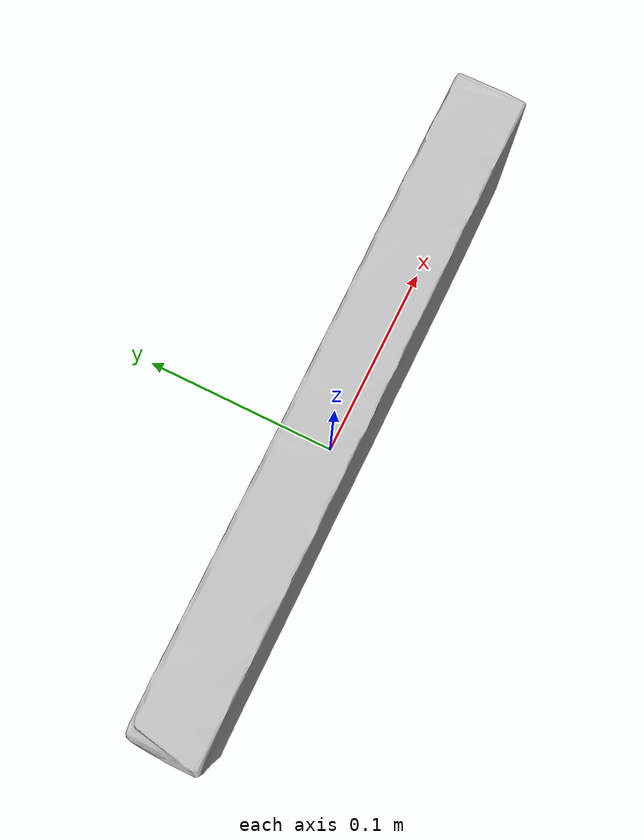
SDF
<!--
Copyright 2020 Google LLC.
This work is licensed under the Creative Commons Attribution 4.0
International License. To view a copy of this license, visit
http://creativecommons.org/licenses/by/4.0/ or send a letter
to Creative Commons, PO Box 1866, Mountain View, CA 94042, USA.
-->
<?xml version="1.0" ?>
<sdf version="1.6">
  <model name="Little_Debbie_Donut_Sticks_6_cake_donuts_10_oz_total">
    <link name="link_0">
      <visual name="visual">
        <geometry>
          <mesh>
            <uri>model://Little_Debbie_Donut_Sticks_6_cake_donuts_10_oz_total/meshes/model.obj</uri>
          </mesh>
        </geometry>
      </visual>
      <collision name="collision_0">
        <geometry>
          <mesh>
            <uri>model://Little_Debbie_Donut_Sticks_6_cake_donuts_10_oz_total/meshes/model.obj</uri>
          </mesh>
        </geometry>
      </collision>
    </link>
  </model>
</sdf>
